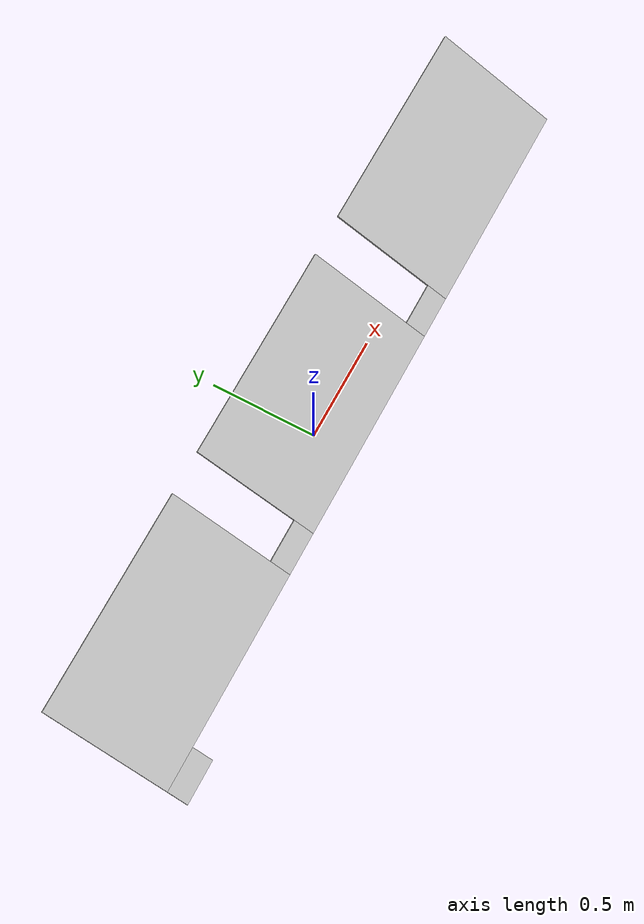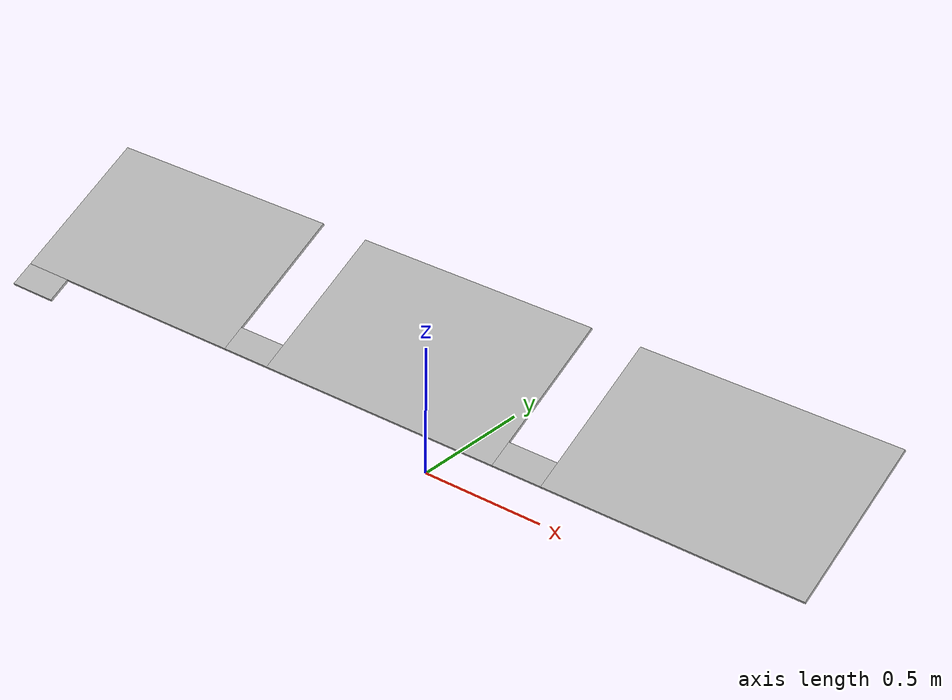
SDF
<?xml version="1.0" ?>
<sdf version="1.6">
  <model name="panel">
    <pose>0 0 0 0 0 0</pose>
	<static>false</static>

    <link name="panel">
	    <pose>-1.2 0 0.5 0.5 0 0</pose>

        <collision name="ccharger">
          <pose>-0.4 -0.25 0 0 0 0</pose>
          <geometry>
          <box>
            <size>0.2 0.1 0.01</size>
          </box>
        </geometry>
        </collision>
        <visual name="vcharger">
          <pose>-0.4 -0.35 0 0 0 0</pose>
          <geometry>
          <box>
            <size>0.2 0.1 0.01</size>
          </box>
        </geometry>
        </visual>

        <collision name="cpanel1">
          <geometry>
          <box>
            <size>1 0.6 0.01</size>
          </box>
        </geometry>
        </collision>
        <visual name="vpanel1">
          <geometry>
          <box>
            <size>1 0.6 0.01</size>
          </box>
        </geometry>
        </visual>

        <collision name="cbridge1">
          <pose>0.6 -0.25 0 0 0 0</pose>
          <geometry>
          <box>
            <size>0.2 0.1 0.01</size>
          </box>
        </geometry>
        </collision>
        <visual name="vbridge1">
          <pose>0.6 -0.25 0 0 0 0</pose>
          <geometry>
          <box>
            <size>0.2 0.1 0.01</size>
          </box>
        </geometry>
        </visual>

        <collision name="cpanel2">
          <pose>1.2 0 0 0 0 0</pose>
          <geometry>
          <box>
            <size>1 0.6 0.01</size>
          </box>
        </geometry>
        </collision>
        <visual name="vpanel2">
          <pose>1.2 0 0 0 0 0</pose>
          <geometry>
          <box>
            <size>1 0.6 0.01</size>
          </box>
        </geometry>
        </visual>

        <collision name="cbridge2">
          <pose>1.8 -0.25 0 0 0 0</pose>
          <geometry>
          <box>
            <size>0.2 0.1 0.01</size>
          </box>
        </geometry>
        </collision>
        <visual name="vbridge2">
          <pose>1.8 -0.25 0 0 0 0</pose>
          <geometry>
          <box>
            <size>0.2 0.1 0.01</size>
          </box>
        </geometry>
        </visual>

        <collision name="cpanel3">
          <pose>2.4 0 0 0 0 0</pose>
          <geometry>
          <box>
            <size>1 0.6 0.01</size>
          </box>
        </geometry>
        </collision>
        <visual name="vpanel3">
          <pose>2.4 0 0 0 0 0</pose>
          <geometry>
          <box>
            <size>1 0.6 0.01</size>
          </box>
        </geometry>
        </visual>
    </link>

  </model>
</sdf>
